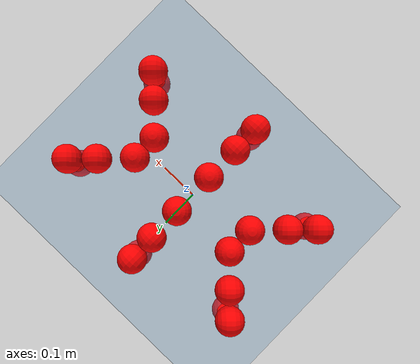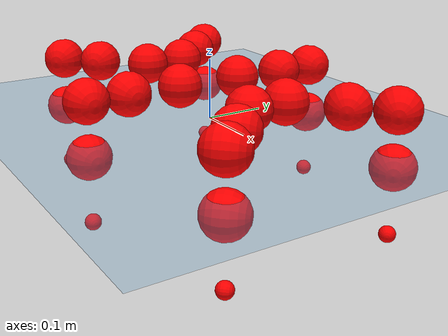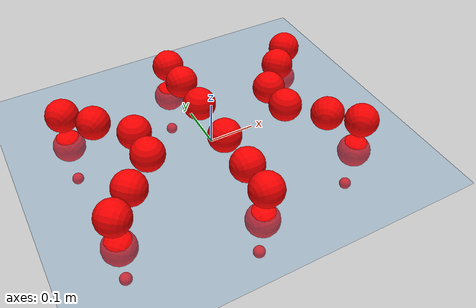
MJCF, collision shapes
<mujoco model="Golem">
  <compiler angle="radian" assetdir="assets" balanceinertia="true" inertiafromgeom="false"/>

  <option timestep="0.005" density="1.2" viscosity="2e-05"/>

  <size nkey="1"/>

  <visual>
    <quality shadowsize="8192"/>
    <map shadowclip="0.5"/>
  </visual>

  <default>
    <default class="/">
      <joint armature="0.01" damping="0.01" frictionloss="0.01"/>
      <geom contype="0" conaffinity="0" group="1" solref="-1000 -80"/>
      <site size="0.01 0.005 0.005" group="5"/>
      <general forcelimited="true" biastype="affine" gainprm="25" biasprm="0 -25 -0.5"/>
      <default class="visual">
        <geom type="mesh" group="2"/>
      </default>
      <default class="collision">
        <geom group="3"/>
      </default>
      <default class="foot">
        <geom size="0.01 0 0" condim="6" group="4" priority="1" solimp="0.015 1 0.01"/>
      </default>
      <default class="reward_collision_sphere">
        <geom group="5" rgba="1 0 0 1"/>
      </default>
    </default>
  </default>

  <asset>
    <texture type="skybox" colorspace="auto" name="//unnamed_texture_0" builtin="gradient" rgb1="0.95 0.95 0.95" rgb2="0.95 0.95 0.95" width="100" height="600"/>
    <texture type="2d" colorspace="auto" name="texplane" builtin="checker" rgb1="0.345 0.575 0.748" rgb2="0.345 0.575 0.748" markrgb="1 1 1" width="512" height="512"/>
    <material name="MatPlane" class="/" texture="texplane" texuniform="true" texrepeat="2 2" specular="0.9"/>
    <mesh name="body" class="/" file="body.stl" scale="0.001 0.001 0.001"/>
    <mesh name="coxa" class="/" file="coxa.stl" scale="0.001 0.001 0.001"/>
    <mesh name="femur" class="/" file="femur.stl" scale="0.001 0.001 0.001"/>
    <mesh name="tibia" class="/" file="tibia.stl" scale="0.001 0.001 0.001"/>
    <mesh name="tarsus" class="/" file="tarsus.stl" scale="0.001 0.001 0.001"/>
  </asset>

  <worldbody>
    <geom name="floor" class="/" size="100 100 0.125" type="plane" group="0" material="MatPlane"/>
    <light name="toplight_shadow" class="/" pos="0 0 5" dir="0.0990148 0.0990148 -0.990148" type="directional" ambient="0.04 0.04 0.04" diffuse="0.55 0.55 0.55" specular="0.12 0.12 0.12"/>
    <light name="toplight_fill" class="/" pos="0 0 5" dir="0.0990148 0.0990148 -0.990148" type="directional" castshadow="false" ambient="0.04 0.04 0.04" diffuse="0.3 0.3 0.3" specular="0.08 0.08 0.08"/>
    <body name="trunk" pos="0.000732578 0.00010729 -0.000283732" quat="1 -5.04586e-05 0.000121921 3.35197e-05">
      <inertial pos="-0.000310395 0.000416108 -0.00351341" quat="0.999992 -0.00145666 0.00353878 -0.00149065" mass="2.66699" diaginertia="0.0109992 0.00118717 0.0103662"/>
      <joint name="//unnamed_joint_0" type="free"/>
      <geom name="//unnamed_geom_1" class="/" pos="0 0 0.0643644" quat="1 0 0 0" type="mesh" rgba="0.9 0.9 0.9 1" mesh="body"/>
      <site name="imu" class="/" pos="0.131442 -0.0018813 0.104155" size="0.00891955"/>
      <camera name="track" class="/" pos="0 -1.30394 0" quat="0.707107 0.707107 0 0" mode="trackcom"/>
      <camera name="ego_camera" class="/" pos="0.132366 0 0.100569" quat="-0.5 -0.5 0.5 0.5"/>
      <body name="coxa_RR" pos="-0.1798 -0.0549402 0.0647265" quat="0.382703 1.85591e-05 1.10959e-05 -0.923871">
        <inertial pos="-0.00107585 -0.000442985 -6.88975e-05" quat="0.999993 0.00185407 0.00327111 -0.000443388" mass="0.142832" diaginertia="0.0109447 0.0011766 0.0102668"/>
        <joint name="coxa_joint_RR" class="/" pos="0 0 0" axis="0.00190211 0.000822915 -0.999998" range="-3.13633 3.12374" armature="0.00918925" damping="0.00652108" frictionloss="0.00898542"/>
        <geom name="//unnamed_geom_2" class="/" type="mesh" rgba="0.2 0.2 0.2 1" mesh="coxa"/>
        <geom name="//unnamed_geom_3" class="reward_collision_sphere" size="0.0356782" pos="-0.030546 0 0"/>
        <body name="femur_RR" pos="0.0599028 0.00035687 0.000126242" quat="0.500016 -0.499874 0.500234 0.499876">
          <inertial pos="2.24774e-05 -0.00039328 -0.000232078" quat="1 -0.00011506 -0.000189119 0.000326988" mass="0.14078" diaginertia="0.0108861 0.00116994 0.010256"/>
          <joint name="femur_joint_RR" class="/" pos="0 0 0" axis="0.000440811 0.00167707 -0.999998" range="-3.15664 3.15614" armature="0.00890416" damping="0" frictionloss="0.00873186"/>
          <geom name="//unnamed_geom_4" class="/" type="mesh" rgba="0.9 0.9 0.9 1" mesh="femur"/>
          <geom name="//unnamed_geom_5" class="reward_collision_sphere" size="0.0356782"/>
          <body name="tibia_RR" pos="-0.000378772 -0.0709864 -0.00046689" quat="-0.000290869 1 -5.5689e-05 0.000105928">
            <inertial pos="0.000819573 5.2654e-05 -0.000332339" quat="0.999997 -0.00234696 0.000200478 -9.1753e-05" mass="0.143606" diaginertia="0.0109205 0.00118484 0.0102338"/>
            <joint name="tibia_joint_RR" class="/" pos="0 0 0" axis="-0.0012482 -0.000617325 0.999999" range="-3.13301 3.13637" armature="0.00894093" damping="0.00222545" frictionloss="0.0089739"/>
            <geom name="//unnamed_geom_6" class="/" type="mesh" rgba="0.2 0.2 0.2 1" mesh="tibia"/>
            <geom name="//unnamed_geom_7" class="reward_collision_sphere" size="0.0356782"/>
            <body name="tarsus_RR" pos="0.0893001 3.87465e-05 -0.00105152" quat="1 0.000192531 0.0002177 0.000369423">
              <inertial pos="0.0623856 0.000745238 0.000125468" quat="0.499791 0.500445 0.500126 0.499637" mass="0.142048" diaginertia="0.0109 0.00118421 0.0102708"/>
              <joint name="tarsus_joint_RR" class="/" pos="0 0 0" axis="0.00133621 0.00626521 0.999979" range="-3.14088 3.13729" armature="0.00898204" damping="0.0424413" frictionloss="0.00916078"/>
              <geom name="//unnamed_geom_8" class="/" type="mesh" rgba="0.9 0.9 0.9 1" mesh="tarsus"/>
              <geom name="foot_1" class="foot" size="0.00859184" pos="0.114039 0 0" quat="0 -0.707107 0 0.707107"/>
              <geom name="//unnamed_geom_10" class="reward_collision_sphere" size="0.0356782"/>
              <geom name="//unnamed_geom_11" class="reward_collision_sphere" size="0.0133793" pos="0.109457 0 0"/>
              <site name="foot_1" class="foot" pos="0.114039 0 0" quat="0 -0.707107 0 0.707107" size="0.00891955"/>
            </body>
          </body>
        </body>
      </body>
      <body name="coxa_RM" pos="-0.000253203 -0.0869215 0.064473" quat="0.707109 2.23404e-05 1.19814e-05 -0.707104">
        <inertial pos="0.000338877 -4.33002e-05 -0.000223151" quat="1 -1.24842e-05 0.000365754 0.00040129" mass="0.141825" diaginertia="0.0110405 0.00116886 0.0102929"/>
        <joint name="coxa_joint_RM" class="/" pos="0 0 0" axis="-0.00079009 -0.00114533 -0.999999" range="-3.15045 3.1408" armature="0.008594" damping="0.00960341" frictionloss="0.00884518"/>
        <geom name="//unnamed_geom_12" class="/" type="mesh" rgba="0.2 0.2 0.2 1" mesh="coxa"/>
        <geom name="//unnamed_geom_13" class="reward_collision_sphere" size="0.0356782" pos="-0.030546 0 0"/>
        <body name="femur_RM" pos="0.0599054 -2.18243e-05 -0.000248756" quat="0.49993 -0.500362 0.499746 0.499962">
          <inertial pos="-1.19833e-05 0.000652077 -0.000151681" quat="0.999997 -0.00149683 -0.00198112 4.51413e-05" mass="0.139532" diaginertia="0.0109257 0.0011639 0.0101338"/>
          <joint name="femur_joint_RM" class="/" pos="0 0 0" axis="0.000517667 -0.000195617 -1" range="-3.15186 3.13231" armature="0.00882964" damping="0.00977033" frictionloss="0.00890729"/>
          <geom name="//unnamed_geom_14" class="/" type="mesh" rgba="0.9 0.9 0.9 1" mesh="femur"/>
          <geom name="//unnamed_geom_15" class="reward_collision_sphere" size="0.0356782"/>
          <body name="tibia_RM" pos="0.000297071 -0.069546 -0.000165569" quat="0.000114061 1 -0.000264176 7.03584e-05">
            <inertial pos="0.000795399 0.000580393 -0.000461042" quat="0.999995 0.00267295 -0.00134226 0.001214" mass="0.142594" diaginertia="0.0109726 0.00118058 0.0102197"/>
            <joint name="tibia_joint_RM" class="/" pos="0 0 0" axis="0.00142747 0.00336767 0.999993" range="-3.13826 3.13873" armature="0.00881007" damping="0.00700052" frictionloss="0.00875866"/>
            <geom name="//unnamed_geom_16" class="/" type="mesh" rgba="0.2 0.2 0.2 1" mesh="tibia"/>
            <geom name="//unnamed_geom_17" class="reward_collision_sphere" size="0.0356782"/>
            <body name="tarsus_RM" pos="0.0899936 -0.000222795 0.00125331" quat="1 1.82376e-05 -2.30534e-05 -2.27928e-05">
              <inertial pos="0.0610704 -0.000448618 0.00033406" quat="0.500238 0.500092 0.499837 0.499833" mass="0.142834" diaginertia="0.0108661 0.00118587 0.0101528"/>
              <joint name="tarsus_joint_RM" class="/" pos="0 0 0" axis="-0.000503497 -0.00122928 0.999999" range="-3.12357 3.15163" armature="0.0092841" damping="0.00467495" frictionloss="0.00862693"/>
              <geom name="//unnamed_geom_18" class="/" type="mesh" rgba="0.9 0.9 0.9 1" mesh="tarsus"/>
              <geom name="foot_2" class="foot" size="0.00902472" pos="0.114039 0 0" quat="0 -0.707107 0 0.707107"/>
              <geom name="//unnamed_geom_20" class="reward_collision_sphere" size="0.0356782"/>
              <geom name="//unnamed_geom_21" class="reward_collision_sphere" size="0.0133793" pos="0.109457 0 0"/>
              <site name="foot_2" class="foot" pos="0.114039 0 0" quat="0 -0.707107 0 0.707107" size="0.00891955"/>
            </body>
          </body>
        </body>
      </body>
      <body name="coxa_RF" pos="0.181455 -0.0550691 0.0639142" quat="0.923903 -8.97051e-05 8.61485e-05 -0.382626">
        <inertial pos="0.000347016 7.35675e-05 0.000265892" quat="1 0.000251991 -0.000195385 -0.000237833" mass="0.142324" diaginertia="0.0108615 0.00118858 0.0102887"/>
        <joint name="coxa_joint_RF" class="/" pos="0 0 0" axis="0.000201286 -0.00120201 -0.999999" range="-3.15277 3.13437" armature="0.00903625" damping="0.00176873" frictionloss="0.00897202"/>
        <geom name="//unnamed_geom_22" class="/" type="mesh" rgba="0.2 0.2 0.2 1" mesh="coxa"/>
        <geom name="//unnamed_geom_23" class="reward_collision_sphere" size="0.0356782" pos="-0.030546 0 0"/>
        <body name="femur_RF" pos="0.059683 0.000160298 -0.000478212" quat="0.499995 -0.500077 0.499879 0.50005">
          <inertial pos="0.000126581 0.000626236 0.000547633" quat="0.999999 0.001483 -0.000216648 -0.000434779" mass="0.139693" diaginertia="0.0108796 0.00117189 0.0102132"/>
          <joint name="femur_joint_RF" class="/" pos="0 0 0" axis="0.00337149 0.000435283 -0.999994" stiffness="1.89011e-05" range="-3.13591 3.15499" armature="0.00922032" damping="0.00934414" frictionloss="0.0086308"/>
          <geom name="//unnamed_geom_24" class="/" type="mesh" rgba="0.9 0.9 0.9 1" mesh="femur"/>
          <geom name="//unnamed_geom_25" class="reward_collision_sphere" size="0.0356782"/>
          <body name="tibia_RF" pos="0.000768615 -0.0713099 0.000270462" quat="-0.000350062 1 0.000204742 -0.000197511">
            <inertial pos="0.000288778 0.000431125 -0.000331486" quat="0.999996 0.00200649 0.00202001 -0.000223251" mass="0.142103" diaginertia="0.0110725 0.0011889 0.0104587"/>
            <joint name="tibia_joint_RF" class="/" pos="0 0 0" axis="-5.50022e-05 -0.000116812 1" range="-3.13684 3.14051" armature="0.00893286" damping="0.0122248" frictionloss="0.00887964"/>
            <geom name="//unnamed_geom_26" class="/" type="mesh" rgba="0.2 0.2 0.2 1" mesh="tibia"/>
            <geom name="//unnamed_geom_27" class="reward_collision_sphere" size="0.0356782"/>
            <body name="tarsus_RF" pos="0.0889762 -5.95223e-05 -0.000181544" quat="1 0.000130792 0.000112158 -0.000139599">
              <inertial pos="0.0601418 -4.55517e-05 6.71669e-05" quat="0.502387 0.49666 0.501181 0.499754" mass="0.143636" diaginertia="0.0110722 0.00119524 0.0104177"/>
              <joint name="tarsus_joint_RF" class="/" pos="0 0 0" axis="-0.0043638 0.00322765 0.999985" range="-3.13637 3.14433" armature="0.00895823" damping="0" frictionloss="0.00853261"/>
              <geom name="//unnamed_geom_28" class="/" type="mesh" rgba="0.9 0.9 0.9 1" mesh="tarsus"/>
              <geom name="foot_3" class="foot" size="0.00877559" pos="0.114039 0 0" quat="0 -0.707107 0 0.707107"/>
              <geom name="//unnamed_geom_30" class="reward_collision_sphere" size="0.0356782"/>
              <geom name="//unnamed_geom_31" class="reward_collision_sphere" size="0.0133793" pos="0.109457 0 0"/>
              <site name="foot_3" class="foot" pos="0.114039 0 0" quat="0 -0.707107 0 0.707107" size="0.00891955"/>
            </body>
          </body>
        </body>
      </body>
      <body name="coxa_LR" pos="-0.179757 0.0577974 0.0651494" quat="0.382734 1.85524e-05 5.90824e-05 0.923859">
        <inertial pos="0.000518206 -0.000228028 0.000880961" quat="1 -0.000301424 -0.00013856 -7.45784e-05" mass="0.14304" diaginertia="0.0109825 0.00118128 0.0102097"/>
        <joint name="coxa_joint_LR" class="/" pos="0 0 0" axis="-0.0012797 0.000993194 -0.999999" range="-3.14749 3.13695" armature="0.00927408" damping="0.00733434" frictionloss="0.00900529"/>
        <geom name="//unnamed_geom_32" class="/" type="mesh" rgba="0.2 0.2 0.2 1" mesh="coxa"/>
        <geom name="//unnamed_geom_33" class="reward_collision_sphere" size="0.0356782" pos="-0.030546 0 0"/>
        <body name="femur_LR" pos="0.0619064 -0.00155691 -0.00140572" quat="0.499888 -0.500237 0.499982 0.499892">
          <inertial pos="-0.000126987 -0.000385685 -0.000857444" quat="0.999998 0.000167075 0.00121696 0.00171986" mass="0.141539" diaginertia="0.0108349 0.00118935 0.0101707"/>
          <joint name="femur_joint_LR" class="/" pos="0 0 0" axis="-0.000581947 0.000310072 1" range="-3.13924 3.13677" armature="0.00894582" damping="0" frictionloss="0.00884742"/>
          <geom name="//unnamed_geom_34" class="/" type="mesh" rgba="0.9 0.9 0.9 1" mesh="femur"/>
          <geom name="//unnamed_geom_35" class="reward_collision_sphere" size="0.0356782"/>
          <body name="tibia_LR" pos="5.56569e-05 -0.0722781 -0.00082317" quat="-3.68211e-05 1 -0.000168358 0.000128767">
            <inertial pos="-0.000924907 0.000139124 4.30246e-05" quat="0.999999 -0.000269009 0.000684596 -0.00128011" mass="0.142003" diaginertia="0.0109306 0.0011701 0.0103593"/>
            <joint name="tibia_joint_LR" class="/" pos="0 0 0" axis="0.000694117 0.000699908 -1" range="-3.13697 3.12734" armature="0.00923032" damping="0.00374221" frictionloss="0.00900846"/>
            <geom name="//unnamed_geom_36" class="/" type="mesh" rgba="0.2 0.2 0.2 1" mesh="tibia"/>
            <geom name="//unnamed_geom_37" class="reward_collision_sphere" size="0.0356782"/>
            <body name="tarsus_LR" pos="0.0896129 0.0012924 0.00135406" quat="1 -2.11935e-05 -7.29699e-05 -4.74925e-05">
              <inertial pos="0.061731 0.000508385 0.000326579" quat="0.500709 0.499047 0.499615 0.500627" mass="0.142906" diaginertia="0.0110467 0.00116438 0.0102708"/>
              <joint name="tarsus_joint_LR" class="/" pos="0 0 0" axis="0.000366667 -0.00307179 -0.999995" stiffness="0.00273445" range="-3.14651 3.15244" armature="0.00876425" damping="0.0276204" frictionloss="0.00863827"/>
              <geom name="//unnamed_geom_38" class="/" type="mesh" rgba="0.9 0.9 0.9 1" mesh="tarsus"/>
              <geom name="foot_4" class="foot" size="0.00887408" pos="0.114039 0 0" quat="0.707107 0 -0.707107 0"/>
              <geom name="//unnamed_geom_40" class="reward_collision_sphere" size="0.0356782"/>
              <geom name="//unnamed_geom_41" class="reward_collision_sphere" size="0.0133793" pos="0.109457 0 0"/>
              <site name="foot_4" class="foot" pos="0.114039 0 0" quat="0.707107 0 -0.707107 0" size="0.00891955"/>
            </body>
          </body>
        </body>
      </body>
      <body name="coxa_LM" pos="-0.00129889 0.0851957 0.0639906" quat="0.707089 -1.19159e-05 6.40695e-05 0.707125">
        <inertial pos="0.000395483 0.000435797 0.000256296" quat="1 0.000159163 0.000121439 0.000100648" mass="0.141977" diaginertia="0.0109644 0.00117728 0.0102772"/>
        <joint name="coxa_joint_LM" class="/" pos="0 0 0" axis="-0.00137335 -0.00463379 -0.999988" range="-3.15625 3.15636" armature="0.00881896" damping="0.00655" frictionloss="0.00853457"/>
        <geom name="//unnamed_geom_42" class="/" type="mesh" rgba="0.2 0.2 0.2 1" mesh="coxa"/>
        <geom name="//unnamed_geom_43" class="reward_collision_sphere" size="0.0356782" pos="-0.030546 0 0"/>
        <body name="femur_LM" pos="0.0568284 0.000709671 -0.000888617" quat="0.49986 -0.500328 0.500001 0.49981">
          <inertial pos="0.000687469 -0.000881547 -0.000393843" quat="0.999996 -0.000613171 0.00290931 -0.000347329" mass="0.142582" diaginertia="0.0109048 0.00119504 0.0103828"/>
          <joint name="femur_joint_LM" class="/" pos="0 0 0" axis="0.00361392 0.00424879 0.999984" range="-3.14808 3.13947" armature="0.00870028" damping="0.00528935" frictionloss="0.00880033"/>
          <geom name="//unnamed_geom_44" class="/" type="mesh" rgba="0.9 0.9 0.9 1" mesh="femur"/>
          <geom name="//unnamed_geom_45" class="reward_collision_sphere" size="0.0356782"/>
          <body name="tibia_LM" pos="0.000250193 -0.0686822 0.00182529" quat="-0.000184238 1 -9.29782e-05 -2.72886e-05">
            <inertial pos="-0.000107244 -0.000873455 -0.000866738" quat="1 0.000499155 -3.8493e-05 5.38005e-05" mass="0.142934" diaginertia="0.0110538 0.00118823 0.0104756"/>
            <joint name="tibia_joint_LM" class="/" pos="0 0 0" axis="0.00109298 -0.00178793 -0.999998" range="-3.13731 3.12521" armature="0.00895858" damping="0.00369567" frictionloss="0.00930648"/>
            <geom name="//unnamed_geom_46" class="/" type="mesh" rgba="0.2 0.2 0.2 1" mesh="tibia"/>
            <geom name="//unnamed_geom_47" class="reward_collision_sphere" size="0.0356782"/>
            <body name="tarsus_LM" pos="0.0882815 -0.000234447 -0.0012403" quat="1 6.68345e-06 -7.22372e-05 3.84131e-05">
              <inertial pos="0.0610975 0.000474395 -0.000184047" quat="0.500798 0.496767 0.502355 0.500064" mass="0.142677" diaginertia="0.0108317 0.00117577 0.0103002"/>
              <joint name="tarsus_joint_LM" class="/" pos="0 0 0" axis="0.00543056 0.00392834 -0.999978" range="-3.13731 3.15485" armature="0.00886202" damping="0.00149556" frictionloss="0.00891804"/>
              <geom name="//unnamed_geom_48" class="/" type="mesh" rgba="0.9 0.9 0.9 1" mesh="tarsus"/>
              <geom name="foot_5" class="foot" size="0.00884418" pos="0.114039 0 0" quat="0.707107 0 -0.707107 0"/>
              <geom name="//unnamed_geom_50" class="reward_collision_sphere" size="0.0356782"/>
              <geom name="//unnamed_geom_51" class="reward_collision_sphere" size="0.0133793" pos="0.109457 0 0"/>
              <site name="foot_5" class="foot" pos="0.114039 0 0" quat="0.707107 0 -0.707107 0" size="0.00891955"/>
            </body>
          </body>
        </body>
      </body>
      <body name="coxa_LF" pos="0.181219 0.0542711 0.0645964" quat="0.923853 1.96561e-05 -1.5822e-05 0.382747">
        <inertial pos="7.98056e-06 0.000403165 -0.000224921" quat="1 -8.16218e-05 1.12435e-05 0.000111935" mass="0.141646" diaginertia="0.0109889 0.0011736 0.0102555"/>
        <joint name="coxa_joint_LF" class="/" pos="0 0 0" axis="0.00237286 0.00366796 -0.99999" range="-3.14257 3.151" armature="0.00902953" damping="0.00383329" frictionloss="0.00895328"/>
        <geom name="//unnamed_geom_52" class="/" type="mesh" rgba="0.2 0.2 0.2 1" mesh="coxa"/>
        <geom name="//unnamed_geom_53" class="reward_collision_sphere" size="0.0356782" pos="-0.030546 0 0"/>
        <body name="femur_LF" pos="0.0607724 0.00106779 -0.00119025" quat="0.500005 -0.499983 0.500028 0.499984">
          <inertial pos="0.000288858 -0.000495602 -0.000344439" quat="1 -8.15133e-05 -0.000412989 0.000105465" mass="0.142613" diaginertia="0.0110336 0.00120219 0.0103977"/>
          <joint name="femur_joint_LF" class="/" pos="0 0 0" axis="0.00142183 -0.00010472 0.999999" range="-3.13916 3.13972" armature="0.00914397" damping="0.00174578" frictionloss="0.0091309"/>
          <geom name="//unnamed_geom_54" class="/" type="mesh" rgba="0.9 0.9 0.9 1" mesh="femur"/>
          <geom name="//unnamed_geom_55" class="reward_collision_sphere" size="0.0356782"/>
          <body name="tibia_LF" pos="0.000194839 -0.070926 -0.000900178" quat="0.000182514 1 -0.000262715 -4.14544e-05">
            <inertial pos="8.03092e-05 -0.000804717 0.000431636" quat="1 -5.25297e-06 0.000140319 -8.22888e-06" mass="0.142934" diaginertia="0.0109816 0.00117537 0.0102248"/>
            <joint name="tibia_joint_LF" class="/" pos="0 0 0" axis="-0.000961804 0.00143563 -0.999999" range="-3.13773 3.15524" armature="0.00859551" damping="0" frictionloss="0.00887071"/>
            <geom name="//unnamed_geom_56" class="/" type="mesh" rgba="0.2 0.2 0.2 1" mesh="tibia"/>
            <geom name="//unnamed_geom_57" class="reward_collision_sphere" size="0.0356782"/>
            <body name="tarsus_LF" pos="0.0887395 -0.000191085 -0.000519526" quat="1 -7.72191e-05 -0.000127751 0.000354185">
              <inertial pos="0.0607799 0.000478041 -0.000350395" quat="0.499655 0.499212 0.500043 0.501087" mass="0.142448" diaginertia="0.0109948 0.00118681 0.0103084"/>
              <joint name="tarsus_joint_LF" class="/" pos="0 0 0" axis="-8.9278e-05 7.68732e-05 -1" range="-3.14486 3.13991" armature="0.00885272" damping="0.0111191" frictionloss="0.00889996"/>
              <geom name="//unnamed_geom_58" class="/" type="mesh" rgba="0.9 0.9 0.9 1" mesh="tarsus"/>
              <geom name="foot_6" class="foot" size="0.00905136" pos="0.114039 0 0" quat="0.707107 0 -0.707107 0"/>
              <geom name="//unnamed_geom_60" class="reward_collision_sphere" size="0.0356782"/>
              <geom name="//unnamed_geom_61" class="reward_collision_sphere" size="0.0133793" pos="0.109457 0 0"/>
              <site name="foot_6" class="foot" pos="0.114039 0 0" quat="0.707107 0 -0.707107 0" size="0.00891955"/>
            </body>
          </body>
        </body>
      </body>
    </body>
  </worldbody>

  <contact>
    <pair class="/" geom1="floor" geom2="foot_1" name="//unnamed_contact_0"/>
    <pair class="/" geom1="floor" geom2="foot_2" name="//unnamed_contact_1"/>
    <pair class="/" geom1="floor" geom2="foot_3" name="//unnamed_contact_2"/>
    <pair class="/" geom1="floor" geom2="foot_4" name="//unnamed_contact_3"/>
    <pair class="/" geom1="floor" geom2="foot_5" name="//unnamed_contact_4"/>
    <pair class="/" geom1="floor" geom2="foot_6" name="//unnamed_contact_5"/>
  </contact>

  <actuator>
    <general name="coxa_joint_RR" class="/" joint="coxa_joint_RR" forcerange="-6.48106 6.48106" gainprm="21.3276" biasprm="0 -21.3276 -0.47041"/>
    <general name="femur_joint_RR" class="/" joint="femur_joint_RR" forcerange="-6.52205 6.52205" gainprm="21.3276" biasprm="0 -21.3276 -0.47041"/>
    <general name="tibia_joint_RR" class="/" joint="tibia_joint_RR" forcerange="-6.45938 6.45938" gainprm="21.3276" biasprm="0 -21.3276 -0.47041"/>
    <general name="tarsus_joint_RR" class="/" joint="tarsus_joint_RR" forcerange="-6.43798 6.43798" gainprm="21.3276" biasprm="0 -21.3276 -0.47041"/>
    <general name="coxa_joint_RM" class="/" joint="coxa_joint_RM" forcerange="-6.47686 6.47686" gainprm="21.3276" biasprm="0 -21.3276 -0.47041"/>
    <general name="femur_joint_RM" class="/" joint="femur_joint_RM" forcerange="-6.65688 6.65688" gainprm="21.3276" biasprm="0 -21.3276 -0.47041"/>
    <general name="tibia_joint_RM" class="/" joint="tibia_joint_RM" forcerange="-6.52397 6.52397" gainprm="21.3276" biasprm="0 -21.3276 -0.47041"/>
    <general name="tarsus_joint_RM" class="/" joint="tarsus_joint_RM" forcerange="-6.48024 6.48024" gainprm="21.3276" biasprm="0 -21.3276 -0.47041"/>
    <general name="coxa_joint_RF" class="/" joint="coxa_joint_RF" forcerange="-6.61824 6.61824" gainprm="21.3276" biasprm="0 -21.3276 -0.47041"/>
    <general name="femur_joint_RF" class="/" joint="femur_joint_RF" forcerange="-6.68392 6.68392" gainprm="21.3276" biasprm="0 -21.3276 -0.47041"/>
    <general name="tibia_joint_RF" class="/" joint="tibia_joint_RF" forcerange="-6.32474 6.32474" gainprm="21.3276" biasprm="0 -21.3276 -0.47041"/>
    <general name="tarsus_joint_RF" class="/" joint="tarsus_joint_RF" forcerange="-6.38312 6.38312" gainprm="21.3276" biasprm="0 -21.3276 -0.47041"/>
    <general name="coxa_joint_LR" class="/" joint="coxa_joint_LR" forcerange="-6.51221 6.51221" gainprm="21.3276" biasprm="0 -21.3276 -0.47041"/>
    <general name="femur_joint_LR" class="/" joint="femur_joint_LR" forcerange="-6.70865 6.70865" gainprm="21.3276" biasprm="0 -21.3276 -0.47041"/>
    <general name="tibia_joint_LR" class="/" joint="tibia_joint_LR" forcerange="-6.46352 6.46352" gainprm="21.3276" biasprm="0 -21.3276 -0.47041"/>
    <general name="tarsus_joint_LR" class="/" joint="tarsus_joint_LR" forcerange="-6.625 6.625" gainprm="21.3276" biasprm="0 -21.3276 -0.47041"/>
    <general name="coxa_joint_LM" class="/" joint="coxa_joint_LM" forcerange="-6.33026 6.33026" gainprm="21.3276" biasprm="0 -21.3276 -0.47041"/>
    <general name="femur_joint_LM" class="/" joint="femur_joint_LM" forcerange="-6.5169 6.5169" gainprm="21.3276" biasprm="0 -21.3276 -0.47041"/>
    <general name="tibia_joint_LM" class="/" joint="tibia_joint_LM" forcerange="-6.48691 6.48691" gainprm="21.3276" biasprm="0 -21.3276 -0.47041"/>
    <general name="tarsus_joint_LM" class="/" joint="tarsus_joint_LM" forcerange="-6.607 6.607" gainprm="21.3276" biasprm="0 -21.3276 -0.47041"/>
    <general name="coxa_joint_LF" class="/" joint="coxa_joint_LF" forcerange="-6.51462 6.51462" gainprm="21.3276" biasprm="0 -21.3276 -0.47041"/>
    <general name="femur_joint_LF" class="/" joint="femur_joint_LF" forcerange="-6.50048 6.50048" gainprm="21.3276" biasprm="0 -21.3276 -0.47041"/>
    <general name="tibia_joint_LF" class="/" joint="tibia_joint_LF" forcerange="-6.48375 6.48375" gainprm="21.3276" biasprm="0 -21.3276 -0.47041"/>
    <general name="tarsus_joint_LF" class="/" joint="tarsus_joint_LF" forcerange="-6.54561 6.54561" gainprm="21.3276" biasprm="0 -21.3276 -0.47041"/>
  </actuator>

  <sensor>
    <gyro site="imu" name="imu_angular_velocity"/>
    <velocimeter site="imu" name="imu_linear_velocity"/>
    <framelinvel objtype="site" objname="foot_1" name="foot_1_global_linear_velocity"/>
    <framelinvel objtype="site" objname="foot_2" name="foot_2_global_linear_velocity"/>
    <framelinvel objtype="site" objname="foot_3" name="foot_3_global_linear_velocity"/>
    <framelinvel objtype="site" objname="foot_4" name="foot_4_global_linear_velocity"/>
    <framelinvel objtype="site" objname="foot_5" name="foot_5_global_linear_velocity"/>
    <framelinvel objtype="site" objname="foot_6" name="foot_6_global_linear_velocity"/>
  </sensor>

  <keyframe>
    <key name="home" qpos="0 0 0.1457 1 0 0 0 0 0 0 0 0 0 0 0 0 0 0 0 0 0 0 0 0 0 0 0 0 0 0 0"/>
  </keyframe>
</mujoco>
